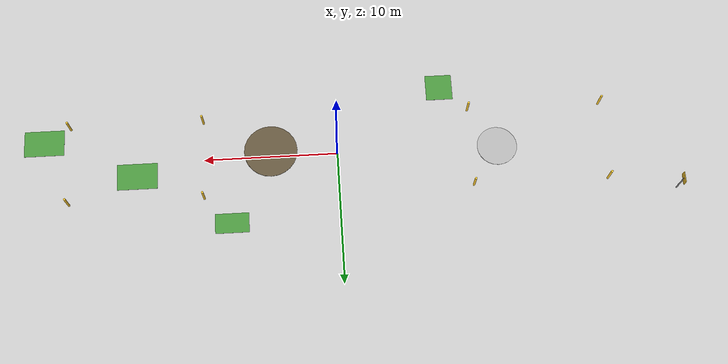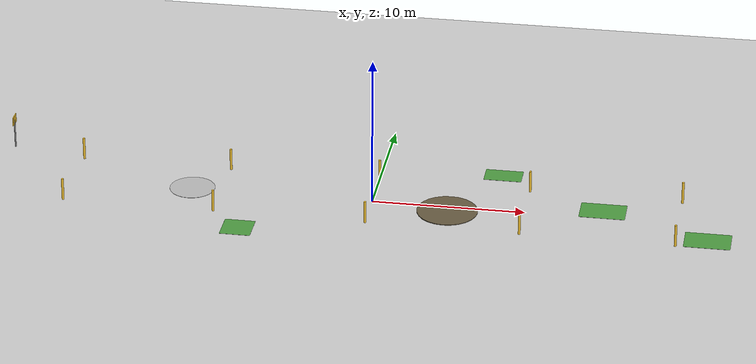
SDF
<?xml version="1.0" ?>
<sdf version="1.6">
  <world name="pipeline_underground_surface">

    <!-- Physics -->
    <physics name="default_physics" default="0" type="ode">
      <max_step_size>0.004</max_step_size>
      <real_time_factor>1.0</real_time_factor>
      <real_time_update_rate>250</real_time_update_rate>
    </physics>

    <!-- Outdoor scene -->
    <scene>
      <ambient>0.5 0.5 0.5 1</ambient>
      <background>0.65 0.75 0.85 1</background>
      <shadows>0</shadows>
      <grid>true</grid>
    </scene>

    <!-- Sun -->
    <light name="sun" type="directional">
      <cast_shadows>0</cast_shadows>
      <pose>0 0 20 0 0 0</pose>
      <diffuse>0.9 0.9 0.85 1</diffuse>
      <specular>0.2 0.2 0.2 1</specular>
      <direction>-0.3 0.4 -1.0</direction>
    </light>

    <!-- Ground plane: bare earth color (typical pipeline corridor)     -->
    <model name="ground_plane">
      <static>true</static>
      <link name="link">
        <collision name="collision">
          <geometry>
            <plane>
              <normal>0 0 1</normal>
              <size>60 40</size>
            </plane>
          </geometry>
        </collision>
        <visual name="visual">
          <geometry>
            <plane>
              <normal>0 0 1</normal>
              <size>60 40</size>
            </plane>
          </geometry>
          <material>
            <script>
              <uri>file:///home/evg/field_robots_lab/install/field_robots_worlds/share/field_robots_worlds/materials/scripts/pipeline_materials.material</uri>
              <uri>file:///home/evg/field_robots_lab/install/field_robots_worlds/share/field_robots_worlds/materials/textures</uri>
              <name>PipelineWorlds/DirtGround</name>
            </script>
          </material>
        </visual>
      </link>
    </model>

    <!-- Pipeline corridor markers (yellow posts mark the buried route) -->
    <!-- Buried pipeline runs along x-axis at y=0                       -->
    <!-- Markers every 10m on both sides at y=±3                        -->

    <!-- North side markers (y = +3) -->
    <model name="marker_n_x20m">
      <static>true</static>
      <pose>-20 3 0.75 0 0 0</pose>
      <link name="link">
        <visual name="visual">
          <geometry>
            <cylinder>
              <radius>0.08</radius>
              <length>1.5</length>
            </cylinder>
          </geometry>
          <material>
            <ambient>0.9 0.7 0.1 1</ambient>
            <diffuse>1.0 0.8 0.2 1</diffuse>
          </material>
        </visual>
      </link>
    </model>
    <model name="marker_n_x10m">
      <static>true</static>
      <pose>-10 3 0.75 0 0 0</pose>
      <link name="link">
        <visual name="visual">
          <geometry>
            <cylinder>
              <radius>0.08</radius>
              <length>1.5</length>
            </cylinder>
          </geometry>
          <material>
            <ambient>0.9 0.7 0.1 1</ambient>
            <diffuse>1.0 0.8 0.2 1</diffuse>
          </material>
        </visual>
      </link>
    </model>
    <model name="marker_n_x0">
      <static>true</static>
      <pose>0 3 0.75 0 0 0</pose>
      <link name="link">
        <visual name="visual">
          <geometry>
            <cylinder>
              <radius>0.08</radius>
              <length>1.5</length>
            </cylinder>
          </geometry>
          <material>
            <ambient>0.9 0.7 0.1 1</ambient>
            <diffuse>1.0 0.8 0.2 1</diffuse>
          </material>
        </visual>
      </link>
    </model>
    <model name="marker_n_xp10m">
      <static>true</static>
      <pose>10 3 0.75 0 0 0</pose>
      <link name="link">
        <visual name="visual">
          <geometry>
            <cylinder>
              <radius>0.08</radius>
              <length>1.5</length>
            </cylinder>
          </geometry>
          <material>
            <ambient>0.9 0.7 0.1 1</ambient>
            <diffuse>1.0 0.8 0.2 1</diffuse>
          </material>
        </visual>
      </link>
    </model>
    <model name="marker_n_xp20m">
      <static>true</static>
      <pose>20 3 0.75 0 0 0</pose>
      <link name="link">
        <visual name="visual">
          <geometry>
            <cylinder>
              <radius>0.08</radius>
              <length>1.5</length>
            </cylinder>
          </geometry>
          <material>
            <ambient>0.9 0.7 0.1 1</ambient>
            <diffuse>1.0 0.8 0.2 1</diffuse>
          </material>
        </visual>
      </link>
    </model>

    <!-- South side markers (y = -3) -->
    <model name="marker_s_x20m">
      <static>true</static>
      <pose>-20 -3 0.75 0 0 0</pose>
      <link name="link">
        <visual name="visual">
          <geometry>
            <cylinder>
              <radius>0.08</radius>
              <length>1.5</length>
            </cylinder>
          </geometry>
          <material>
            <ambient>0.9 0.7 0.1 1</ambient>
            <diffuse>1.0 0.8 0.2 1</diffuse>
          </material>
        </visual>
      </link>
    </model>
    <model name="marker_s_x10m">
      <static>true</static>
      <pose>-10 -3 0.75 0 0 0</pose>
      <link name="link">
        <visual name="visual">
          <geometry>
            <cylinder>
              <radius>0.08</radius>
              <length>1.5</length>
            </cylinder>
          </geometry>
          <material>
            <ambient>0.9 0.7 0.1 1</ambient>
            <diffuse>1.0 0.8 0.2 1</diffuse>
          </material>
        </visual>
      </link>
    </model>
    <model name="marker_s_x0">
      <static>true</static>
      <pose>0 -3 0.75 0 0 0</pose>
      <link name="link">
        <visual name="visual">
          <geometry>
            <cylinder>
              <radius>0.08</radius>
              <length>1.5</length>
            </cylinder>
          </geometry>
          <material>
            <ambient>0.9 0.7 0.1 1</ambient>
            <diffuse>1.0 0.8 0.2 1</diffuse>
          </material>
        </visual>
      </link>
    </model>
    <model name="marker_s_xp10m">
      <static>true</static>
      <pose>10 -3 0.75 0 0 0</pose>
      <link name="link">
        <visual name="visual">
          <geometry>
            <cylinder>
              <radius>0.08</radius>
              <length>1.5</length>
            </cylinder>
          </geometry>
          <material>
            <ambient>0.9 0.7 0.1 1</ambient>
            <diffuse>1.0 0.8 0.2 1</diffuse>
          </material>
        </visual>
      </link>
    </model>
    <model name="marker_s_xp20m">
      <static>true</static>
      <pose>20 -3 0.75 0 0 0</pose>
      <link name="link">
        <visual name="visual">
          <geometry>
            <cylinder>
              <radius>0.08</radius>
              <length>1.5</length>
            </cylinder>
          </geometry>
          <material>
            <ambient>0.9 0.7 0.1 1</ambient>
            <diffuse>1.0 0.8 0.2 1</diffuse>
          </material>
        </visual>
      </link>
    </model>

    <!-- Pipeline marker sign (vertical board near corridor start)      -->
    <model name="warning_sign">
      <static>true</static>
      <pose>-25 4 1.5 0 0 0</pose>
      <link name="link">
        <visual name="post">
          <pose>0 0 -0.5 0 0 0</pose>
          <geometry>
            <cylinder>
              <radius>0.05</radius>
              <length>2.0</length>
            </cylinder>
          </geometry>
          <material>
            <ambient>0.4 0.4 0.4 1</ambient>
            <diffuse>0.5 0.5 0.5 1</diffuse>
          </material>
        </visual>
        <visual name="board">
          <pose>0 0 0.5 0 0 0</pose>
          <geometry>
            <box>
              <size>0.05 0.8 0.6</size>
            </box>
          </geometry>
          <material>
            <ambient>0.9 0.7 0.1 1</ambient>
            <diffuse>1.0 0.8 0.2 1</diffuse>
          </material>
        </visual>
      </link>
    </model>

    <!-- ANOMALY 1: Soil discoloration patch (potential gas leak hint)  -->
    <!-- Dark wet-looking patch on the ground at x=-12, y=0             -->
    <model name="anomaly_soil_patch">
      <static>true</static>
      <pose>-12 0 0.01 0 0 0</pose>
      <link name="link">
        <visual name="visual">
          <geometry>
            <cylinder>
              <radius>1.5</radius>
              <length>0.02</length>
            </cylinder>
          </geometry>
          <material>
            <script>
              <uri>file:///home/evg/field_robots_lab/install/field_robots_worlds/share/field_robots_worlds/materials/scripts/pipeline_materials.material</uri>
              <uri>file:///home/evg/field_robots_lab/install/field_robots_worlds/share/field_robots_worlds/materials/textures</uri>
              <name>PipelineWorlds/WetSoil</name>
            </script>
          </material>
        </visual>
      </link>
    </model>

    <!-- ANOMALY 2: Ground subsidence (depression in soil)              -->
    <!-- Slightly recessed disc at x=5, y=-0.5                          -->
    <model name="anomaly_subsidence">
      <static>true</static>
      <pose>5 -0.5 -0.05 0 0 0</pose>
      <link name="link">
        <visual name="visual">
          <geometry>
            <cylinder>
              <radius>2.0</radius>
              <length>0.1</length>
            </cylinder>
          </geometry>
          <material>
            <ambient>0.35 0.3 0.22 1</ambient>
            <diffuse>0.4 0.35 0.25 1</diffuse>
          </material>
        </visual>
      </link>
    </model>

    <!-- ANOMALY 3: Vegetation stress zone (yellowish patch)            -->
    <!-- Dried/stressed vegetation at x=15, y=1                         -->
    <model name="anomaly_vegetation_stress">
      <static>true</static>
      <pose>15 1 0.005 0 0 0</pose>
      <link name="link">
        <visual name="visual">
          <geometry>
            <box>
              <size>3.0 2.0 0.01</size>
            </box>
          </geometry>
          <material>
            <script>
              <uri>file:///home/evg/field_robots_lab/install/field_robots_worlds/share/field_robots_worlds/materials/scripts/pipeline_materials.material</uri>
              <uri>file:///home/evg/field_robots_lab/install/field_robots_worlds/share/field_robots_worlds/materials/textures</uri>
              <name>PipelineWorlds/GrassDry</name>
            </script>
          </material>
        </visual>
      </link>
    </model>

    <!-- Normal vegetation patches (green) for contrast / reference     -->
    <model name="vegetation_normal_1">
      <static>true</static>
      <pose>-8 -5 0.005 0 0 0</pose>
      <link name="link">
        <visual name="visual">
          <geometry>
            <box>
              <size>2.0 2.0 0.01</size>
            </box>
          </geometry>
          <material>
            <script>
              <uri>file:///home/evg/field_robots_lab/install/field_robots_worlds/share/field_robots_worlds/materials/scripts/pipeline_materials.material</uri>
              <uri>file:///home/evg/field_robots_lab/install/field_robots_worlds/share/field_robots_worlds/materials/textures</uri>
              <name>PipelineWorlds/GrassNormal</name>
            </script>
          </material>
        </visual>
      </link>
    </model>

    <model name="vegetation_normal_2">
      <static>true</static>
      <pose>8 5 0.005 0 0 0</pose>
      <link name="link">
        <visual name="visual">
          <geometry>
            <box>
              <size>2.5 1.5 0.01</size>
            </box>
          </geometry>
          <material>
            <script>
              <uri>file:///home/evg/field_robots_lab/install/field_robots_worlds/share/field_robots_worlds/materials/scripts/pipeline_materials.material</uri>
              <uri>file:///home/evg/field_robots_lab/install/field_robots_worlds/share/field_robots_worlds/materials/textures</uri>
              <name>PipelineWorlds/GrassNormal</name>
            </script>
          </material>
        </visual>
      </link>
    </model>

    <model name="vegetation_normal_3">
      <static>true</static>
      <pose>22 -2 0.005 0 0 0</pose>
      <link name="link">
        <visual name="visual">
          <geometry>
            <box>
              <size>3.0 2.0 0.01</size>
            </box>
          </geometry>
          <material>
            <script>
              <uri>file:///home/evg/field_robots_lab/install/field_robots_worlds/share/field_robots_worlds/materials/scripts/pipeline_materials.material</uri>
              <uri>file:///home/evg/field_robots_lab/install/field_robots_worlds/share/field_robots_worlds/materials/textures</uri>
              <name>PipelineWorlds/GrassNormal</name>
            </script>
          </material>
        </visual>
      </link>
    </model>

  </world>
</sdf>
